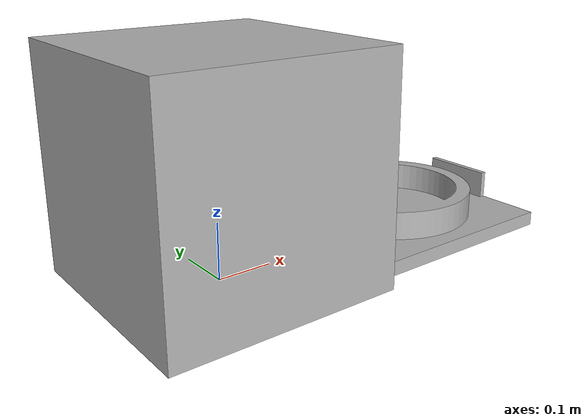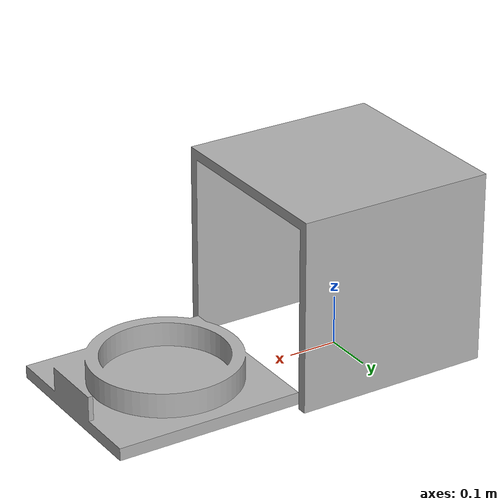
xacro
<?xml version="1.0" ?>
<robot name="launchpad" xmlns:xacro="http://www.ros.org/wiki/xacro">

<xacro:include filename="$(find launchpad_description)/urdf/materials.xacro" />
<xacro:include filename="$(find launchpad_description)/urdf/launchpad.trans" />
<xacro:include filename="$(find launchpad_description)/urdf/launchpad.gazebo" />
<link name="base_link">
  <inertial>
    <origin rpy="0 0 0" xyz="-0.04295315682281059 0.0 0.23795315682281057"/>
    <mass value="92.50439999999999"/>
    <inertia ixx="3.705359" ixy="0.0" ixz="-0.210402" iyy="3.00491" iyz="0.0" izz="3.779502"/>
  </inertial>
  <visual>
    <origin rpy="0 0 0" xyz="0 0 0"/>
    <geometry>
      <mesh filename="package://launchpad_description/meshes/base_link.stl" scale="0.001 0.001 0.001"/>
    </geometry>
    <material name="silver"/>
  </visual>
  <collision>
    <origin rpy="0 0 0" xyz="0 0 0"/>
    <geometry>
      <mesh filename="package://launchpad_description/meshes/base_link.stl" scale="0.001 0.001 0.001"/>
    </geometry>
  </collision>
</link>

<link name="slider_1">
  <inertial>
    <origin rpy="0 0 0" xyz="0.1902935657048615 -1.0418920458268021e-16 0.021909136890474683"/>
    <mass value="2.483654550875743"/>
    <inertia ixx="0.026627" ixy="-0.0" ixz="-2e-05" iyy="0.030151" iyz="-0.0" izz="0.055012"/>
  </inertial>
  <visual>
    <origin rpy="0 0 0" xyz="-0.2 -0.0 -0.01"/>
    <geometry>
      <mesh filename="package://launchpad_description/meshes/slider_1.stl" scale="0.001 0.001 0.001"/>
    </geometry>
    <material name="silver"/>
  </visual>
  <collision>
    <origin rpy="0 0 0" xyz="-0.2 -0.0 -0.01"/>
    <geometry>
      <mesh filename="package://launchpad_description/meshes/slider_1.stl" scale="0.001 0.001 0.001"/>
    </geometry>
  </collision>
</link>

<joint name="Slider1" type="prismatic">
  <origin rpy="0 0 0" xyz="0.2 0.0 0.01"/>
  <parent link="base_link"/>
  <child link="slider_1"/>
  <axis xyz="-1.0 0.0 0.0"/>
  <limit effort="100" lower="0.0" upper="0.38" velocity="100"/>
</joint>

</robot>

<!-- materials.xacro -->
<robot name="launchpad" xmlns:xacro="http://www.ros.org/wiki/xacro" >

<material name="silver">
  <color rgba="0.700 0.700 0.700 1.000"/>
</material>

</robot>

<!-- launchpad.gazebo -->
<robot name="launchpad" xmlns:xacro="http://www.ros.org/wiki/xacro" >

<xacro:property name="body_color" value="Gazebo/Green" />
<xacro:property name="slider_color" value="Gazebo/Red" />

<gazebo>
  <plugin filename="libgazebo_ros_control.so" name="control"/>
</gazebo>
<gazebo reference="base_link">
  <material>${body_color}</material>
  <mu1>1000</mu1>
  <mu2>1000</mu2>
  <selfCollide>true</selfCollide>
  <gravity>true</gravity>
  <static>true</static>
  <kinematic>true</kinematic>
</gazebo>

<gazebo reference="slider_1">
  <material>${slider_color}</material>
  <mu1>1000</mu1>
  <mu2>1000</mu2>
  <selfCollide>true</selfCollide>
</gazebo>

</robot>
